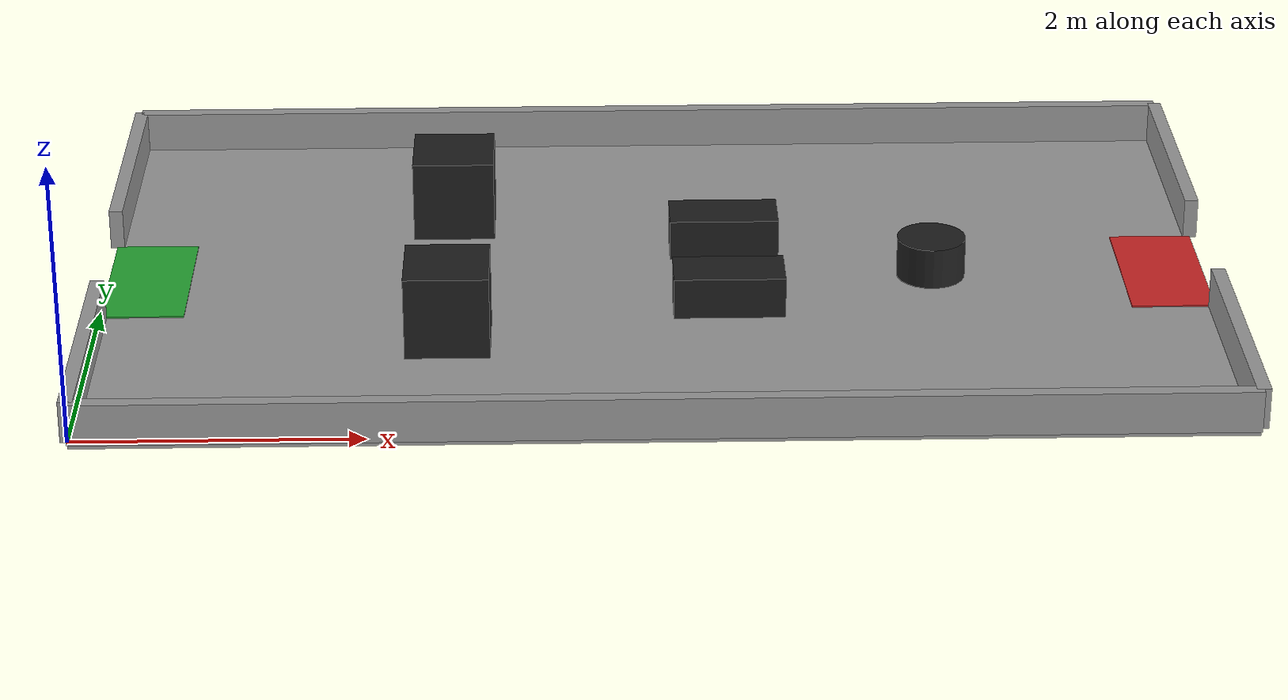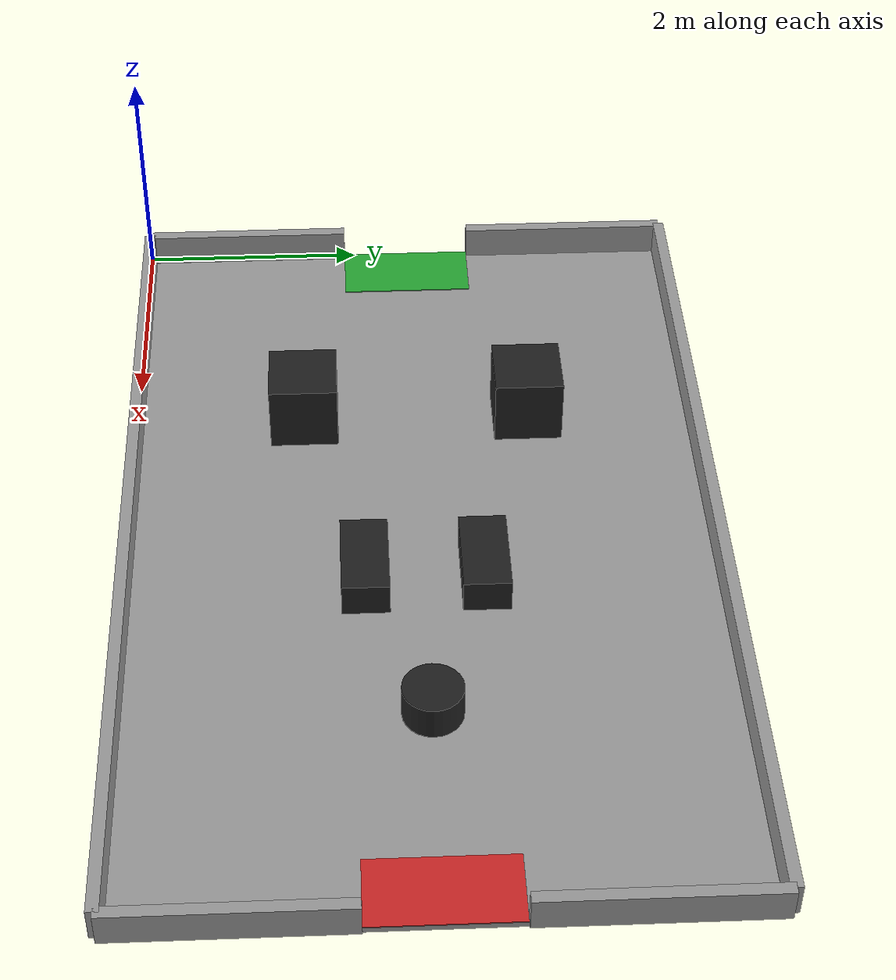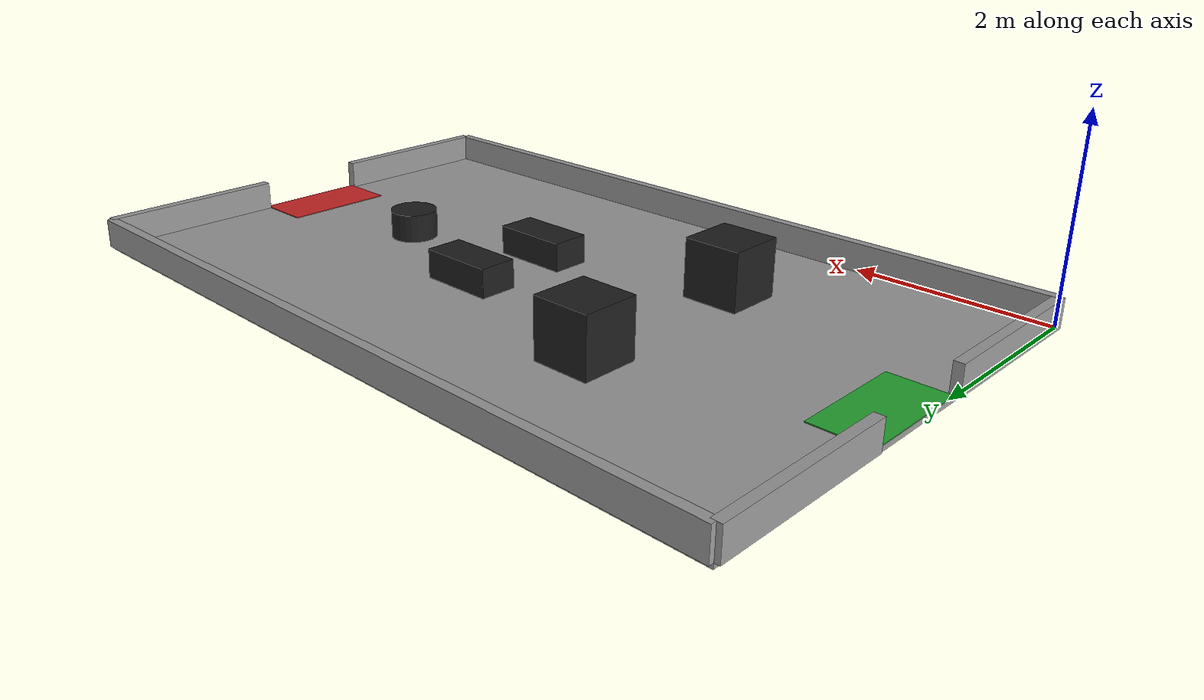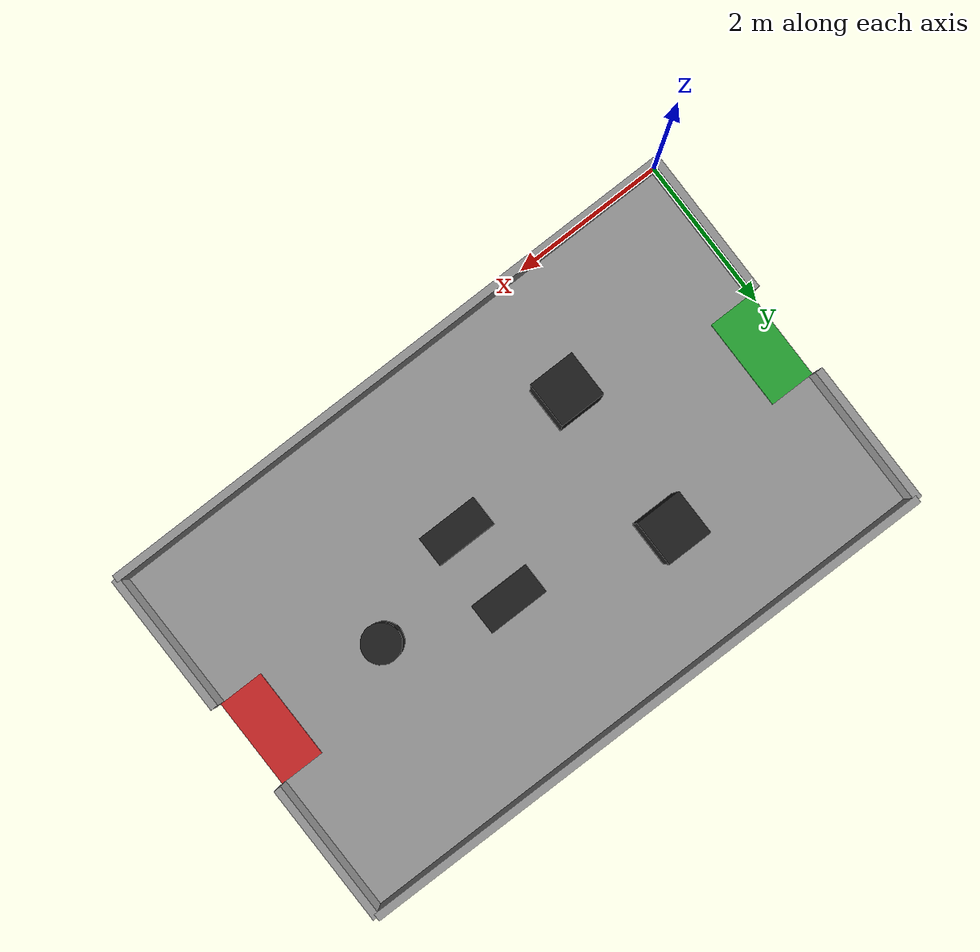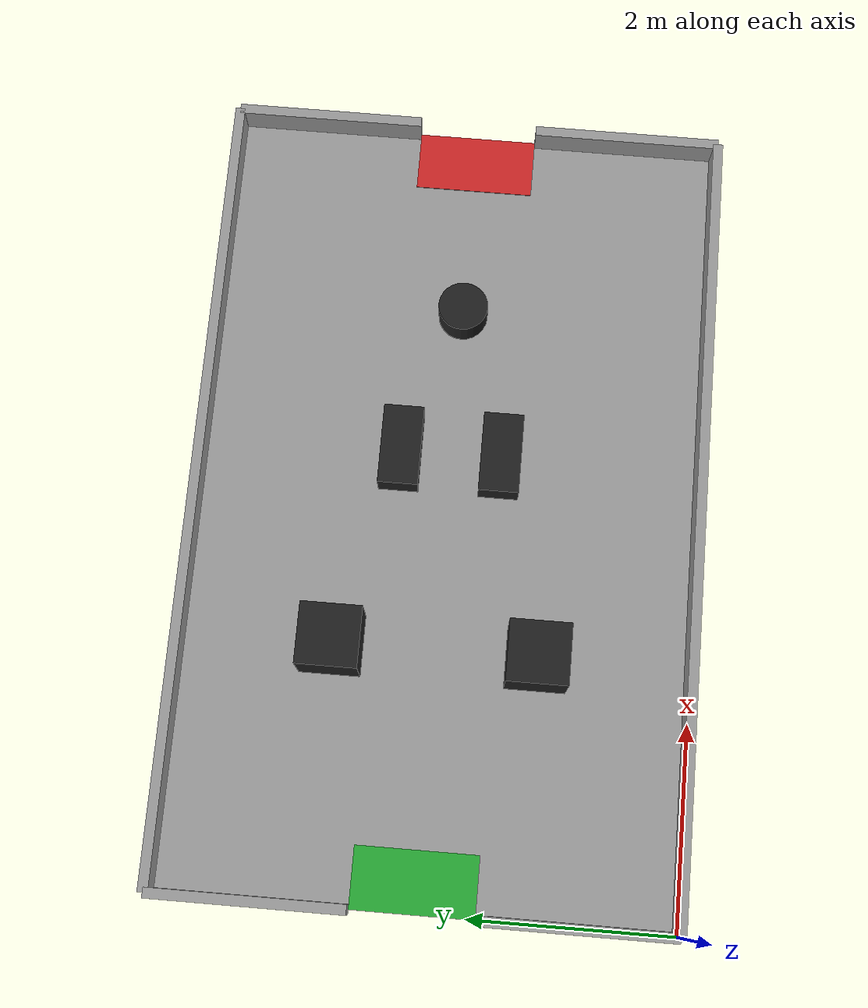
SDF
<?xml version="1.0" ?>
<!-- 8m x 5m 避障场景：y范围0~5，四周墙壁（左右各有出入口缺口）+ 5个障碍物 -->
<sdf version="1.6">
  <world name="obstacle_course">

    <!-- 物理引擎参数 -->
    <physics type="ode">
      <max_step_size>0.004</max_step_size>
      <real_time_factor>1.0</real_time_factor>
      <real_time_update_rate>250</real_time_update_rate>
    </physics>

    <!-- 太阳光照 -->
    <include>
      <uri>world://sun</uri>
    </include>

    <!-- 地面：8m x 5m，中心在(4, 2.5)，y范围0~5 -->
    <model name="ground_plane">
      <static>true</static>
      <link name="link">
        <collision name="collision">
          <geometry>
            <box>
              <size>8 5 0.05</size>
            </box>
          </geometry>
          <pose>4 2.5 -0.025 0 0 0</pose>
        </collision>
        <visual name="visual">
          <geometry>
            <box>
              <size>8 5 0.05</size>
            </box>
          </geometry>
          <pose>4 2.5 -0.025 0 0 0</pose>
          <material>
            <script>
              <uri>file://media/materials/scripts/gazebo.material</uri>
              <name>Gazebo/Grey</name>
            </script>
          </material>
          <surface>
            <friction>
              <ode>
                <mu>1.0</mu>
                <mu2>1.0</mu2>
              </ode>
            </friction>
          </surface>
        </visual>
      </link>
    </model>

    <!-- ======== 围墙（左右墙在y=2.5处留1.2m出入口缺口） ======== -->

    <!-- 后墙 (y=5侧) -->
    <model name="wall_back">
      <static>true</static>
      <pose>4 5 0.15 0 0 0</pose>
      <link name="link">
        <collision name="collision">
          <geometry><box><size>8 0.1 0.3</size></box></geometry>
        </collision>
        <visual name="visual">
          <geometry><box><size>8 0.1 0.3</size></box></geometry>
          <material><script><uri>file://media/materials/scripts/gazebo.material</uri><name>Gazebo/Grey</name></script></material>
        </visual>
      </link>
    </model>

    <!-- 前墙 (y=0侧) -->
    <model name="wall_front">
      <static>true</static>
      <pose>4 0 0.15 0 0 0</pose>
      <link name="link">
        <collision name="collision">
          <geometry><box><size>8 0.1 0.3</size></box></geometry>
        </collision>
        <visual name="visual">
          <geometry><box><size>8 0.1 0.3</size></box></geometry>
          <material><script><uri>file://media/materials/scripts/gazebo.material</uri><name>Gazebo/Grey</name></script></material>
        </visual>
      </link>
    </model>

    <!-- 左墙 (x=0侧) — y=2.5处留有入口缺口 (y=1.9~3.1) -->
    <model name="wall_left_bottom">
      <static>true</static>
      <pose>0 0.95 0.15 0 0 0</pose>
      <link name="link">
        <collision name="collision">
          <geometry><box><size>0.1 1.9 0.3</size></box></geometry>
        </collision>
        <visual name="visual">
          <geometry><box><size>0.1 1.9 0.3</size></box></geometry>
          <material><script><uri>file://media/materials/scripts/gazebo.material</uri><name>Gazebo/Grey</name></script></material>
        </visual>
      </link>
    </model>

    <model name="wall_left_top">
      <static>true</static>
      <pose>0 4.05 0.15 0 0 0</pose>
      <link name="link">
        <collision name="collision">
          <geometry><box><size>0.1 1.9 0.3</size></box></geometry>
        </collision>
        <visual name="visual">
          <geometry><box><size>0.1 1.9 0.3</size></box></geometry>
          <material><script><uri>file://media/materials/scripts/gazebo.material</uri><name>Gazebo/Grey</name></script></material>
        </visual>
      </link>
    </model>

    <!-- 右墙 (x=8侧) — y=2.5处留有出口缺口 (y=1.9~3.1) -->
    <model name="wall_right_bottom">
      <static>true</static>
      <pose>8 0.95 0.15 0 0 0</pose>
      <link name="link">
        <collision name="collision">
          <geometry><box><size>0.1 1.9 0.3</size></box></geometry>
        </collision>
        <visual name="visual">
          <geometry><box><size>0.1 1.9 0.3</size></box></geometry>
          <material><script><uri>file://media/materials/scripts/gazebo.material</uri><name>Gazebo/Grey</name></script></material>
        </visual>
      </link>
    </model>

    <model name="wall_right_top">
      <static>true</static>
      <pose>8 4.05 0.15 0 0 0</pose>
      <link name="link">
        <collision name="collision">
          <geometry><box><size>0.1 1.9 0.3</size></box></geometry>
        </collision>
        <visual name="visual">
          <geometry><box><size>0.1 1.9 0.3</size></box></geometry>
          <material><script><uri>file://media/materials/scripts/gazebo.material</uri><name>Gazebo/Grey</name></script></material>
        </visual>
      </link>
    </model>

    <!-- ======== 5个障碍物（黑色）—— 作业要求坐标 ======== -->

    <!-- 障碍物1：方块 0.6x0.6x0.6 @ (2.5, 1.5) -->
    <model name="obstacle_1">
      <static>true</static>
      <pose>2.5 1.5 0.3 0 0 0</pose>
      <link name="link">
        <collision name="collision">
          <geometry><box><size>0.6 0.6 0.6</size></box></geometry>
        </collision>
        <visual name="visual">
          <geometry><box><size>0.6 0.6 0.6</size></box></geometry>
          <material><script><uri>file://media/materials/scripts/gazebo.material</uri><name>Gazebo/Black</name></script></material>
        </visual>
      </link>
    </model>

    <!-- 障碍物2：方块 0.6x0.6x0.6 @ (2.5, 3.5) -->
    <model name="obstacle_2">
      <static>true</static>
      <pose>2.5 3.5 0.3 0 0 0</pose>
      <link name="link">
        <collision name="collision">
          <geometry><box><size>0.6 0.6 0.6</size></box></geometry>
        </collision>
        <visual name="visual">
          <geometry><box><size>0.6 0.6 0.6</size></box></geometry>
          <material><script><uri>file://media/materials/scripts/gazebo.material</uri><name>Gazebo/Black</name></script></material>
        </visual>
      </link>
    </model>

    <!-- 障碍物3：扁方块 0.8x0.4x0.3 @ (4.5, 2.0) -->
    <model name="obstacle_3">
      <static>true</static>
      <pose>4.5 2.0 0.15 0 0 0</pose>
      <link name="link">
        <collision name="collision">
          <geometry><box><size>0.8 0.4 0.3</size></box></geometry>
        </collision>
        <visual name="visual">
          <geometry><box><size>0.8 0.4 0.3</size></box></geometry>
          <material><script><uri>file://media/materials/scripts/gazebo.material</uri><name>Gazebo/Black</name></script></material>
        </visual>
      </link>
    </model>

    <!-- 障碍物4：扁方块 0.8x0.4x0.3 @ (4.5, 3.0) -->
    <model name="obstacle_4">
      <static>true</static>
      <pose>4.5 3.0 0.15 0 0 0</pose>
      <link name="link">
        <collision name="collision">
          <geometry><box><size>0.8 0.4 0.3</size></box></geometry>
        </collision>
        <visual name="visual">
          <geometry><box><size>0.8 0.4 0.3</size></box></geometry>
          <material><script><uri>file://media/materials/scripts/gazebo.material</uri><name>Gazebo/Black</name></script></material>
        </visual>
      </link>
    </model>

    <!-- 障碍物5：圆柱 φ0.5m h=0.3 @ (6.0, 2.5) -->
    <model name="obstacle_5">
      <static>true</static>
      <pose>6.0 2.5 0.15 0 0 0</pose>
      <link name="link">
        <collision name="collision">
          <geometry><cylinder><radius>0.25</radius><length>0.3</length></cylinder></geometry>
        </collision>
        <visual name="visual">
          <geometry><cylinder><radius>0.25</radius><length>0.3</length></cylinder></geometry>
          <material><script><uri>file://media/materials/scripts/gazebo.material</uri><name>Gazebo/Black</name></script></material>
        </visual>
      </link>
    </model>

    <!-- ======== 入口/出口地面标记 ======== -->
    <!-- 入口标记（绿色矩形）@ 左侧入口处 -->
    <model name="entrance_marker">
      <static>true</static>
      <pose>0.3 2.5 0.005 0 0 0</pose>
      <link name="link">
        <visual name="visual">
          <geometry><box><size>0.6 1.2 0.01</size></box></geometry>
          <material><script><uri>file://media/materials/scripts/gazebo.material</uri><name>Gazebo/Green</name></script></material>
        </visual>
      </link>
    </model>

    <!-- 出口标记（红色矩形）@ 右侧出口处 -->
    <model name="exit_marker">
      <static>true</static>
      <pose>7.7 2.5 0.005 0 0 0</pose>
      <link name="link">
        <visual name="visual">
          <geometry><box><size>0.6 1.2 0.01</size></box></geometry>
          <material><script><uri>file://media/materials/scripts/gazebo.material</uri><name>Gazebo/Red</name></script></material>
        </visual>
      </link>
    </model>

  </world>
</sdf>
